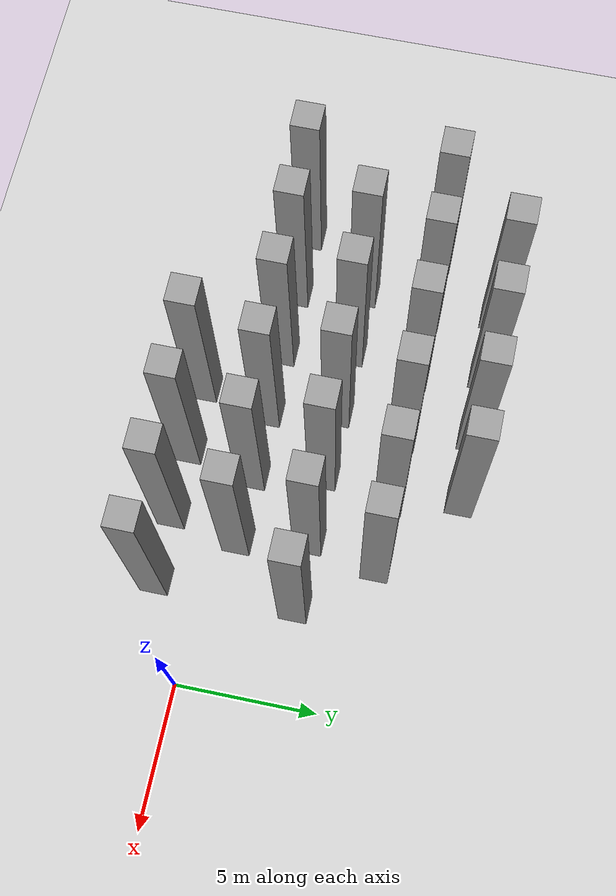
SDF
<sdf version="1.7">
 <world name="default">
  <model name="ground_plane">
   <static>1</static>
   <link name="link">
    <collision name="collision">
     <geometry><plane><normal>0 0 1</normal><size>100 100</size></plane></geometry>
     <surface>
      <contact><collide_bitmask>65535</collide_bitmask></contact>
      <friction><ode><mu>100</mu><mu2>50</mu2></ode></friction>
     </surface>
    </collision>
    <visual name="visual">
     <cast_shadows>0</cast_shadows>
     <geometry><plane><normal>0 0 1</normal><size>100 100</size></plane></geometry>
     <material>
      <script><uri>file://media/materials/scripts/gazebo.material</uri><name>Gazebo/Grey</name></script>
     </material>
    </visual>
   </link>
  </model>
  <model name="unit_box_static105">
   <link name="link">
    <inertial>
     <mass>1</mass>
     <inertia>
      <ixx>0.166667</ixx>
      <ixy>0</ixy>
      <ixz>0</ixz>
      <iyy>0.166667</iyy>
      <iyz>0</iyz>
      <izz>0.166667</izz>
     </inertia>
    </inertial>
    <visual name="visual">
     <geometry><box><size>1 1 8</size></box></geometry>
     <material>
      <script><name>Gazebo/Grey</name><uri>file://media/materials/scripts/gazebo.material</uri></script>
      <shader type="pixel"/>
     </material>
    </visual>
    <collision name="collision">
     <geometry><box><size>1 1 8</size></box></geometry>
     <surface>
      <friction>
       <ode><mu>1</mu><mu2>1</mu2><fdir1>0 0 0</fdir1><slip1>0</slip1><slip2>0</slip2></ode>
       <torsional>
        <coefficient>1</coefficient>
        <patch_radius>0</patch_radius>
        <surface_radius>0</surface_radius>
        <use_patch_radius>1</use_patch_radius>
        <ode><slip>0</slip></ode>
       </torsional>
      </friction>
      <bounce><restitution_coefficient>0</restitution_coefficient><threshold>1e+06</threshold></bounce>
      <contact>
       <collide_without_contact>0</collide_without_contact>
       <collide_without_contact_bitmask>1</collide_without_contact_bitmask>
       <collide_bitmask>1</collide_bitmask>
       <ode>
        <soft_cfm>0</soft_cfm>
        <soft_erp>0.2</soft_erp>
        <kp>1e+13</kp>
        <kd>1</kd>
        <max_vel>0.01</max_vel>
        <min_depth>0</min_depth>
       </ode>
       <bullet>
        <split_impulse>1</split_impulse>
        <split_impulse_penetration_threshold>-0.01</split_impulse_penetration_threshold>
        <soft_cfm>0</soft_cfm>
        <soft_erp>0.2</soft_erp>
        <kp>1e+13</kp>
        <kd>1</kd>
       </bullet>
      </contact>
     </surface>
    </collision>
   </link>
   <static>1</static>
   <pose>-11 -1.5 4 0 -0 0</pose>
  </model>
  <model name="unit_box_static106">
   <link name="link">
    <inertial>
     <mass>1</mass>
     <inertia>
      <ixx>0.166667</ixx>
      <ixy>0</ixy>
      <ixz>0</ixz>
      <iyy>0.166667</iyy>
      <iyz>0</iyz>
      <izz>0.166667</izz>
     </inertia>
    </inertial>
    <visual name="visual">
     <geometry><box><size>1 1 8</size></box></geometry>
     <material>
      <script><name>Gazebo/Grey</name><uri>file://media/materials/scripts/gazebo.material</uri></script>
      <shader type="pixel"/>
     </material>
    </visual>
    <collision name="collision">
     <geometry><box><size>1 1 8</size></box></geometry>
     <surface>
      <friction>
       <ode><mu>1</mu><mu2>1</mu2><fdir1>0 0 0</fdir1><slip1>0</slip1><slip2>0</slip2></ode>
       <torsional>
        <coefficient>1</coefficient>
        <patch_radius>0</patch_radius>
        <surface_radius>0</surface_radius>
        <use_patch_radius>1</use_patch_radius>
        <ode><slip>0</slip></ode>
       </torsional>
      </friction>
      <bounce><restitution_coefficient>0</restitution_coefficient><threshold>1e+06</threshold></bounce>
      <contact>
       <collide_without_contact>0</collide_without_contact>
       <collide_without_contact_bitmask>1</collide_without_contact_bitmask>
       <collide_bitmask>1</collide_bitmask>
       <ode>
        <soft_cfm>0</soft_cfm>
        <soft_erp>0.2</soft_erp>
        <kp>1e+13</kp>
        <kd>1</kd>
        <max_vel>0.01</max_vel>
        <min_depth>0</min_depth>
       </ode>
       <bullet>
        <split_impulse>1</split_impulse>
        <split_impulse_penetration_threshold>-0.01</split_impulse_penetration_threshold>
        <soft_cfm>0</soft_cfm>
        <soft_erp>0.2</soft_erp>
        <kp>1e+13</kp>
        <kd>1</kd>
       </bullet>
      </contact>
     </surface>
    </collision>
   </link>
   <static>1</static>
   <pose>-8.5 -1.5 4 0 -0 0</pose>
  </model>
  <model name="unit_box_static107">
   <link name="link">
    <inertial>
     <mass>1</mass>
     <inertia>
      <ixx>0.166667</ixx>
      <ixy>0</ixy>
      <ixz>0</ixz>
      <iyy>0.166667</iyy>
      <iyz>0</iyz>
      <izz>0.166667</izz>
     </inertia>
    </inertial>
    <visual name="visual">
     <geometry><box><size>1 1 8</size></box></geometry>
     <material>
      <script><name>Gazebo/Grey</name><uri>file://media/materials/scripts/gazebo.material</uri></script>
      <shader type="pixel"/>
     </material>
    </visual>
    <collision name="collision">
     <geometry><box><size>1 1 8</size></box></geometry>
     <surface>
      <friction>
       <ode><mu>1</mu><mu2>1</mu2><fdir1>0 0 0</fdir1><slip1>0</slip1><slip2>0</slip2></ode>
       <torsional>
        <coefficient>1</coefficient>
        <patch_radius>0</patch_radius>
        <surface_radius>0</surface_radius>
        <use_patch_radius>1</use_patch_radius>
        <ode><slip>0</slip></ode>
       </torsional>
      </friction>
      <bounce><restitution_coefficient>0</restitution_coefficient><threshold>1e+06</threshold></bounce>
      <contact>
       <collide_without_contact>0</collide_without_contact>
       <collide_without_contact_bitmask>1</collide_without_contact_bitmask>
       <collide_bitmask>1</collide_bitmask>
       <ode>
        <soft_cfm>0</soft_cfm>
        <soft_erp>0.2</soft_erp>
        <kp>1e+13</kp>
        <kd>1</kd>
        <max_vel>0.01</max_vel>
        <min_depth>0</min_depth>
       </ode>
       <bullet>
        <split_impulse>1</split_impulse>
        <split_impulse_penetration_threshold>-0.01</split_impulse_penetration_threshold>
        <soft_cfm>0</soft_cfm>
        <soft_erp>0.2</soft_erp>
        <kp>1e+13</kp>
        <kd>1</kd>
       </bullet>
      </contact>
     </surface>
    </collision>
   </link>
   <static>1</static>
   <pose>-6 -1.5 4 0 -0 0</pose>
  </model>
  <model name="unit_box_static108">
   <link name="link">
    <inertial>
     <mass>1</mass>
     <inertia>
      <ixx>0.166667</ixx>
      <ixy>0</ixy>
      <ixz>0</ixz>
      <iyy>0.166667</iyy>
      <iyz>0</iyz>
      <izz>0.166667</izz>
     </inertia>
    </inertial>
    <visual name="visual">
     <geometry><box><size>1 1 8</size></box></geometry>
     <material>
      <script><name>Gazebo/Grey</name><uri>file://media/materials/scripts/gazebo.material</uri></script>
      <shader type="pixel"/>
     </material>
    </visual>
    <collision name="collision">
     <geometry><box><size>1 1 8</size></box></geometry>
     <surface>
      <friction>
       <ode><mu>1</mu><mu2>1</mu2><fdir1>0 0 0</fdir1><slip1>0</slip1><slip2>0</slip2></ode>
       <torsional>
        <coefficient>1</coefficient>
        <patch_radius>0</patch_radius>
        <surface_radius>0</surface_radius>
        <use_patch_radius>1</use_patch_radius>
        <ode><slip>0</slip></ode>
       </torsional>
      </friction>
      <bounce><restitution_coefficient>0</restitution_coefficient><threshold>1e+06</threshold></bounce>
      <contact>
       <collide_without_contact>0</collide_without_contact>
       <collide_without_contact_bitmask>1</collide_without_contact_bitmask>
       <collide_bitmask>1</collide_bitmask>
       <ode>
        <soft_cfm>0</soft_cfm>
        <soft_erp>0.2</soft_erp>
        <kp>1e+13</kp>
        <kd>1</kd>
        <max_vel>0.01</max_vel>
        <min_depth>0</min_depth>
       </ode>
       <bullet>
        <split_impulse>1</split_impulse>
        <split_impulse_penetration_threshold>-0.01</split_impulse_penetration_threshold>
        <soft_cfm>0</soft_cfm>
        <soft_erp>0.2</soft_erp>
        <kp>1e+13</kp>
        <kd>1</kd>
       </bullet>
      </contact>
     </surface>
    </collision>
   </link>
   <static>1</static>
   <pose>-3.5 -1.5 4 0 -0 0</pose>
  </model>
  <model name="unit_box_static117">
   <link name="link">
    <inertial>
     <mass>1</mass>
     <inertia>
      <ixx>0.166667</ixx>
      <ixy>0</ixy>
      <ixz>0</ixz>
      <iyy>0.166667</iyy>
      <iyz>0</iyz>
      <izz>0.166667</izz>
     </inertia>
    </inertial>
    <visual name="visual">
     <geometry><box><size>1 1 8</size></box></geometry>
     <material>
      <script><name>Gazebo/Grey</name><uri>file://media/materials/scripts/gazebo.material</uri></script>
      <shader type="pixel"/>
     </material>
    </visual>
    <collision name="collision">
     <geometry><box><size>1 1 8</size></box></geometry>
     <surface>
      <friction>
       <ode><mu>1</mu><mu2>1</mu2><fdir1>0 0 0</fdir1><slip1>0</slip1><slip2>0</slip2></ode>
       <torsional>
        <coefficient>1</coefficient>
        <patch_radius>0</patch_radius>
        <surface_radius>0</surface_radius>
        <use_patch_radius>1</use_patch_radius>
        <ode><slip>0</slip></ode>
       </torsional>
      </friction>
      <bounce><restitution_coefficient>0</restitution_coefficient><threshold>1e+06</threshold></bounce>
      <contact>
       <collide_without_contact>0</collide_without_contact>
       <collide_without_contact_bitmask>1</collide_without_contact_bitmask>
       <collide_bitmask>1</collide_bitmask>
       <ode>
        <soft_cfm>0</soft_cfm>
        <soft_erp>0.2</soft_erp>
        <kp>1e+13</kp>
        <kd>1</kd>
        <max_vel>0.01</max_vel>
        <min_depth>0</min_depth>
       </ode>
       <bullet>
        <split_impulse>1</split_impulse>
        <split_impulse_penetration_threshold>-0.01</split_impulse_penetration_threshold>
        <soft_cfm>0</soft_cfm>
        <soft_erp>0.2</soft_erp>
        <kp>1e+13</kp>
        <kd>1</kd>
       </bullet>
      </contact>
     </surface>
    </collision>
   </link>
   <static>1</static>
   <pose>-18 1 4 0 -0 0</pose>
  </model>
  <model name="unit_box_static118">
   <link name="link">
    <inertial>
     <mass>1</mass>
     <inertia>
      <ixx>0.166667</ixx>
      <ixy>0</ixy>
      <ixz>0</ixz>
      <iyy>0.166667</iyy>
      <iyz>0</iyz>
      <izz>0.166667</izz>
     </inertia>
    </inertial>
    <visual name="visual">
     <geometry><box><size>1 1 8</size></box></geometry>
     <material>
      <script><name>Gazebo/Grey</name><uri>file://media/materials/scripts/gazebo.material</uri></script>
      <shader type="pixel"/>
     </material>
    </visual>
    <collision name="collision">
     <geometry><box><size>1 1 8</size></box></geometry>
     <surface>
      <friction>
       <ode><mu>1</mu><mu2>1</mu2><fdir1>0 0 0</fdir1><slip1>0</slip1><slip2>0</slip2></ode>
       <torsional>
        <coefficient>1</coefficient>
        <patch_radius>0</patch_radius>
        <surface_radius>0</surface_radius>
        <use_patch_radius>1</use_patch_radius>
        <ode><slip>0</slip></ode>
       </torsional>
      </friction>
      <bounce><restitution_coefficient>0</restitution_coefficient><threshold>1e+06</threshold></bounce>
      <contact>
       <collide_without_contact>0</collide_without_contact>
       <collide_without_contact_bitmask>1</collide_without_contact_bitmask>
       <collide_bitmask>1</collide_bitmask>
       <ode>
        <soft_cfm>0</soft_cfm>
        <soft_erp>0.2</soft_erp>
        <kp>1e+13</kp>
        <kd>1</kd>
        <max_vel>0.01</max_vel>
        <min_depth>0</min_depth>
       </ode>
       <bullet>
        <split_impulse>1</split_impulse>
        <split_impulse_penetration_threshold>-0.01</split_impulse_penetration_threshold>
        <soft_cfm>0</soft_cfm>
        <soft_erp>0.2</soft_erp>
        <kp>1e+13</kp>
        <kd>1</kd>
       </bullet>
      </contact>
     </surface>
    </collision>
   </link>
   <static>1</static>
   <pose>-15.5 1 4 0 -0 0</pose>
  </model>
  <model name="unit_box_static119">
   <link name="link">
    <inertial>
     <mass>1</mass>
     <inertia>
      <ixx>0.166667</ixx>
      <ixy>0</ixy>
      <ixz>0</ixz>
      <iyy>0.166667</iyy>
      <iyz>0</iyz>
      <izz>0.166667</izz>
     </inertia>
    </inertial>
    <visual name="visual">
     <geometry><box><size>1 1 8</size></box></geometry>
     <material>
      <script><name>Gazebo/Grey</name><uri>file://media/materials/scripts/gazebo.material</uri></script>
      <shader type="pixel"/>
     </material>
    </visual>
    <collision name="collision">
     <geometry><box><size>1 1 8</size></box></geometry>
     <surface>
      <friction>
       <ode><mu>1</mu><mu2>1</mu2><fdir1>0 0 0</fdir1><slip1>0</slip1><slip2>0</slip2></ode>
       <torsional>
        <coefficient>1</coefficient>
        <patch_radius>0</patch_radius>
        <surface_radius>0</surface_radius>
        <use_patch_radius>1</use_patch_radius>
        <ode><slip>0</slip></ode>
       </torsional>
      </friction>
      <bounce><restitution_coefficient>0</restitution_coefficient><threshold>1e+06</threshold></bounce>
      <contact>
       <collide_without_contact>0</collide_without_contact>
       <collide_without_contact_bitmask>1</collide_without_contact_bitmask>
       <collide_bitmask>1</collide_bitmask>
       <ode>
        <soft_cfm>0</soft_cfm>
        <soft_erp>0.2</soft_erp>
        <kp>1e+13</kp>
        <kd>1</kd>
        <max_vel>0.01</max_vel>
        <min_depth>0</min_depth>
       </ode>
       <bullet>
        <split_impulse>1</split_impulse>
        <split_impulse_penetration_threshold>-0.01</split_impulse_penetration_threshold>
        <soft_cfm>0</soft_cfm>
        <soft_erp>0.2</soft_erp>
        <kp>1e+13</kp>
        <kd>1</kd>
       </bullet>
      </contact>
     </surface>
    </collision>
   </link>
   <static>1</static>
   <pose>-13 1 4 0 -0 0</pose>
  </model>
  <model name="unit_box_static120">
   <link name="link">
    <inertial>
     <mass>1</mass>
     <inertia>
      <ixx>0.166667</ixx>
      <ixy>0</ixy>
      <ixz>0</ixz>
      <iyy>0.166667</iyy>
      <iyz>0</iyz>
      <izz>0.166667</izz>
     </inertia>
    </inertial>
    <visual name="visual">
     <geometry><box><size>1 1 8</size></box></geometry>
     <material>
      <script><name>Gazebo/Grey</name><uri>file://media/materials/scripts/gazebo.material</uri></script>
      <shader type="pixel"/>
     </material>
    </visual>
    <collision name="collision">
     <geometry><box><size>1 1 8</size></box></geometry>
     <surface>
      <friction>
       <ode><mu>1</mu><mu2>1</mu2><fdir1>0 0 0</fdir1><slip1>0</slip1><slip2>0</slip2></ode>
       <torsional>
        <coefficient>1</coefficient>
        <patch_radius>0</patch_radius>
        <surface_radius>0</surface_radius>
        <use_patch_radius>1</use_patch_radius>
        <ode><slip>0</slip></ode>
       </torsional>
      </friction>
      <bounce><restitution_coefficient>0</restitution_coefficient><threshold>1e+06</threshold></bounce>
      <contact>
       <collide_without_contact>0</collide_without_contact>
       <collide_without_contact_bitmask>1</collide_without_contact_bitmask>
       <collide_bitmask>1</collide_bitmask>
       <ode>
        <soft_cfm>0</soft_cfm>
        <soft_erp>0.2</soft_erp>
        <kp>1e+13</kp>
        <kd>1</kd>
        <max_vel>0.01</max_vel>
        <min_depth>0</min_depth>
       </ode>
       <bullet>
        <split_impulse>1</split_impulse>
        <split_impulse_penetration_threshold>-0.01</split_impulse_penetration_threshold>
        <soft_cfm>0</soft_cfm>
        <soft_erp>0.2</soft_erp>
        <kp>1e+13</kp>
        <kd>1</kd>
       </bullet>
      </contact>
     </surface>
    </collision>
   </link>
   <static>1</static>
   <pose>-10.5 1 4 0 -0 0</pose>
  </model>
  <model name="unit_box_static121">
   <link name="link">
    <inertial>
     <mass>1</mass>
     <inertia>
      <ixx>0.166667</ixx>
      <ixy>0</ixy>
      <ixz>0</ixz>
      <iyy>0.166667</iyy>
      <iyz>0</iyz>
      <izz>0.166667</izz>
     </inertia>
    </inertial>
    <visual name="visual">
     <geometry><box><size>1 1 8</size></box></geometry>
     <material>
      <script><name>Gazebo/Grey</name><uri>file://media/materials/scripts/gazebo.material</uri></script>
      <shader type="pixel"/>
     </material>
    </visual>
    <collision name="collision">
     <geometry><box><size>1 1 8</size></box></geometry>
     <surface>
      <friction>
       <ode><mu>1</mu><mu2>1</mu2><fdir1>0 0 0</fdir1><slip1>0</slip1><slip2>0</slip2></ode>
       <torsional>
        <coefficient>1</coefficient>
        <patch_radius>0</patch_radius>
        <surface_radius>0</surface_radius>
        <use_patch_radius>1</use_patch_radius>
        <ode><slip>0</slip></ode>
       </torsional>
      </friction>
      <bounce><restitution_coefficient>0</restitution_coefficient><threshold>1e+06</threshold></bounce>
      <contact>
       <collide_without_contact>0</collide_without_contact>
       <collide_without_contact_bitmask>1</collide_without_contact_bitmask>
       <collide_bitmask>1</collide_bitmask>
       <ode>
        <soft_cfm>0</soft_cfm>
        <soft_erp>0.2</soft_erp>
        <kp>1e+13</kp>
        <kd>1</kd>
        <max_vel>0.01</max_vel>
        <min_depth>0</min_depth>
       </ode>
       <bullet>
        <split_impulse>1</split_impulse>
        <split_impulse_penetration_threshold>-0.01</split_impulse_penetration_threshold>
        <soft_cfm>0</soft_cfm>
        <soft_erp>0.2</soft_erp>
        <kp>1e+13</kp>
        <kd>1</kd>
       </bullet>
      </contact>
     </surface>
    </collision>
   </link>
   <static>1</static>
   <pose>-8 1 4 0 -0 0</pose>
  </model>
  <model name="unit_box_static122">
   <link name="link">
    <inertial>
     <mass>1</mass>
     <inertia>
      <ixx>0.166667</ixx>
      <ixy>0</ixy>
      <ixz>0</ixz>
      <iyy>0.166667</iyy>
      <iyz>0</iyz>
      <izz>0.166667</izz>
     </inertia>
    </inertial>
    <visual name="visual">
     <geometry><box><size>1 1 8</size></box></geometry>
     <material>
      <script><name>Gazebo/Grey</name><uri>file://media/materials/scripts/gazebo.material</uri></script>
      <shader type="pixel"/>
     </material>
    </visual>
    <collision name="collision">
     <geometry><box><size>1 1 8</size></box></geometry>
     <surface>
      <friction>
       <ode><mu>1</mu><mu2>1</mu2><fdir1>0 0 0</fdir1><slip1>0</slip1><slip2>0</slip2></ode>
       <torsional>
        <coefficient>1</coefficient>
        <patch_radius>0</patch_radius>
        <surface_radius>0</surface_radius>
        <use_patch_radius>1</use_patch_radius>
        <ode><slip>0</slip></ode>
       </torsional>
      </friction>
      <bounce><restitution_coefficient>0</restitution_coefficient><threshold>1e+06</threshold></bounce>
      <contact>
       <collide_without_contact>0</collide_without_contact>
       <collide_without_contact_bitmask>1</collide_without_contact_bitmask>
       <collide_bitmask>1</collide_bitmask>
       <ode>
        <soft_cfm>0</soft_cfm>
        <soft_erp>0.2</soft_erp>
        <kp>1e+13</kp>
        <kd>1</kd>
        <max_vel>0.01</max_vel>
        <min_depth>0</min_depth>
       </ode>
       <bullet>
        <split_impulse>1</split_impulse>
        <split_impulse_penetration_threshold>-0.01</split_impulse_penetration_threshold>
        <soft_cfm>0</soft_cfm>
        <soft_erp>0.2</soft_erp>
        <kp>1e+13</kp>
        <kd>1</kd>
       </bullet>
      </contact>
     </surface>
    </collision>
   </link>
   <static>1</static>
   <pose>-5.5 1 4 0 -0 0</pose>
  </model>
  <model name="unit_box_static132">
   <link name="link">
    <inertial>
     <mass>1</mass>
     <inertia>
      <ixx>0.166667</ixx>
      <ixy>0</ixy>
      <ixz>0</ixz>
      <iyy>0.166667</iyy>
      <iyz>0</iyz>
      <izz>0.166667</izz>
     </inertia>
    </inertial>
    <visual name="visual">
     <geometry><box><size>1 1 8</size></box></geometry>
     <material>
      <script><name>Gazebo/Grey</name><uri>file://media/materials/scripts/gazebo.material</uri></script>
      <shader type="pixel"/>
     </material>
    </visual>
    <collision name="collision">
     <geometry><box><size>1 1 8</size></box></geometry>
     <surface>
      <friction>
       <ode><mu>1</mu><mu2>1</mu2><fdir1>0 0 0</fdir1><slip1>0</slip1><slip2>0</slip2></ode>
       <torsional>
        <coefficient>1</coefficient>
        <patch_radius>0</patch_radius>
        <surface_radius>0</surface_radius>
        <use_patch_radius>1</use_patch_radius>
        <ode><slip>0</slip></ode>
       </torsional>
      </friction>
      <bounce><restitution_coefficient>0</restitution_coefficient><threshold>1e+06</threshold></bounce>
      <contact>
       <collide_without_contact>0</collide_without_contact>
       <collide_without_contact_bitmask>1</collide_without_contact_bitmask>
       <collide_bitmask>1</collide_bitmask>
       <ode>
        <soft_cfm>0</soft_cfm>
        <soft_erp>0.2</soft_erp>
        <kp>1e+13</kp>
        <kd>1</kd>
        <max_vel>0.01</max_vel>
        <min_depth>0</min_depth>
       </ode>
       <bullet>
        <split_impulse>1</split_impulse>
        <split_impulse_penetration_threshold>-0.01</split_impulse_penetration_threshold>
        <soft_cfm>0</soft_cfm>
        <soft_erp>0.2</soft_erp>
        <kp>1e+13</kp>
        <kd>1</kd>
       </bullet>
      </contact>
     </surface>
    </collision>
   </link>
   <static>1</static>
   <pose>-16 3.5 4 0 -0 0</pose>
  </model>
  <model name="unit_box_static133">
   <link name="link">
    <inertial>
     <mass>1</mass>
     <inertia>
      <ixx>0.166667</ixx>
      <ixy>0</ixy>
      <ixz>0</ixz>
      <iyy>0.166667</iyy>
      <iyz>0</iyz>
      <izz>0.166667</izz>
     </inertia>
    </inertial>
    <visual name="visual">
     <geometry><box><size>1 1 8</size></box></geometry>
     <material>
      <script><name>Gazebo/Grey</name><uri>file://media/materials/scripts/gazebo.material</uri></script>
      <shader type="pixel"/>
     </material>
    </visual>
    <collision name="collision">
     <geometry><box><size>1 1 8</size></box></geometry>
     <surface>
      <friction>
       <ode><mu>1</mu><mu2>1</mu2><fdir1>0 0 0</fdir1><slip1>0</slip1><slip2>0</slip2></ode>
       <torsional>
        <coefficient>1</coefficient>
        <patch_radius>0</patch_radius>
        <surface_radius>0</surface_radius>
        <use_patch_radius>1</use_patch_radius>
        <ode><slip>0</slip></ode>
       </torsional>
      </friction>
      <bounce><restitution_coefficient>0</restitution_coefficient><threshold>1e+06</threshold></bounce>
      <contact>
       <collide_without_contact>0</collide_without_contact>
       <collide_without_contact_bitmask>1</collide_without_contact_bitmask>
       <collide_bitmask>1</collide_bitmask>
       <ode>
        <soft_cfm>0</soft_cfm>
        <soft_erp>0.2</soft_erp>
        <kp>1e+13</kp>
        <kd>1</kd>
        <max_vel>0.01</max_vel>
        <min_depth>0</min_depth>
       </ode>
       <bullet>
        <split_impulse>1</split_impulse>
        <split_impulse_penetration_threshold>-0.01</split_impulse_penetration_threshold>
        <soft_cfm>0</soft_cfm>
        <soft_erp>0.2</soft_erp>
        <kp>1e+13</kp>
        <kd>1</kd>
       </bullet>
      </contact>
     </surface>
    </collision>
   </link>
   <static>1</static>
   <pose>-13.5 3.5 4 0 -0 0</pose>
  </model>
  <model name="unit_box_static134">
   <link name="link">
    <inertial>
     <mass>1</mass>
     <inertia>
      <ixx>0.166667</ixx>
      <ixy>0</ixy>
      <ixz>0</ixz>
      <iyy>0.166667</iyy>
      <iyz>0</iyz>
      <izz>0.166667</izz>
     </inertia>
    </inertial>
    <visual name="visual">
     <geometry><box><size>1 1 8</size></box></geometry>
     <material>
      <script><name>Gazebo/Grey</name><uri>file://media/materials/scripts/gazebo.material</uri></script>
      <shader type="pixel"/>
     </material>
    </visual>
    <collision name="collision">
     <geometry><box><size>1 1 8</size></box></geometry>
     <surface>
      <friction>
       <ode><mu>1</mu><mu2>1</mu2><fdir1>0 0 0</fdir1><slip1>0</slip1><slip2>0</slip2></ode>
       <torsional>
        <coefficient>1</coefficient>
        <patch_radius>0</patch_radius>
        <surface_radius>0</surface_radius>
        <use_patch_radius>1</use_patch_radius>
        <ode><slip>0</slip></ode>
       </torsional>
      </friction>
      <bounce><restitution_coefficient>0</restitution_coefficient><threshold>1e+06</threshold></bounce>
      <contact>
       <collide_without_contact>0</collide_without_contact>
       <collide_without_contact_bitmask>1</collide_without_contact_bitmask>
       <collide_bitmask>1</collide_bitmask>
       <ode>
        <soft_cfm>0</soft_cfm>
        <soft_erp>0.2</soft_erp>
        <kp>1e+13</kp>
        <kd>1</kd>
        <max_vel>0.01</max_vel>
        <min_depth>0</min_depth>
       </ode>
       <bullet>
        <split_impulse>1</split_impulse>
        <split_impulse_penetration_threshold>-0.01</split_impulse_penetration_threshold>
        <soft_cfm>0</soft_cfm>
        <soft_erp>0.2</soft_erp>
        <kp>1e+13</kp>
        <kd>1</kd>
       </bullet>
      </contact>
     </surface>
    </collision>
   </link>
   <static>1</static>
   <pose>-11 3.5 4 0 -0 0</pose>
  </model>
  <model name="unit_box_static135">
   <link name="link">
    <inertial>
     <mass>1</mass>
     <inertia>
      <ixx>0.166667</ixx>
      <ixy>0</ixy>
      <ixz>0</ixz>
      <iyy>0.166667</iyy>
      <iyz>0</iyz>
      <izz>0.166667</izz>
     </inertia>
    </inertial>
    <visual name="visual">
     <geometry><box><size>1 1 8</size></box></geometry>
     <material>
      <script><name>Gazebo/Grey</name><uri>file://media/materials/scripts/gazebo.material</uri></script>
      <shader type="pixel"/>
     </material>
    </visual>
    <collision name="collision">
     <geometry><box><size>1 1 8</size></box></geometry>
     <surface>
      <friction>
       <ode><mu>1</mu><mu2>1</mu2><fdir1>0 0 0</fdir1><slip1>0</slip1><slip2>0</slip2></ode>
       <torsional>
        <coefficient>1</coefficient>
        <patch_radius>0</patch_radius>
        <surface_radius>0</surface_radius>
        <use_patch_radius>1</use_patch_radius>
        <ode><slip>0</slip></ode>
       </torsional>
      </friction>
      <bounce><restitution_coefficient>0</restitution_coefficient><threshold>1e+06</threshold></bounce>
      <contact>
       <collide_without_contact>0</collide_without_contact>
       <collide_without_contact_bitmask>1</collide_without_contact_bitmask>
       <collide_bitmask>1</collide_bitmask>
       <ode>
        <soft_cfm>0</soft_cfm>
        <soft_erp>0.2</soft_erp>
        <kp>1e+13</kp>
        <kd>1</kd>
        <max_vel>0.01</max_vel>
        <min_depth>0</min_depth>
       </ode>
       <bullet>
        <split_impulse>1</split_impulse>
        <split_impulse_penetration_threshold>-0.01</split_impulse_penetration_threshold>
        <soft_cfm>0</soft_cfm>
        <soft_erp>0.2</soft_erp>
        <kp>1e+13</kp>
        <kd>1</kd>
       </bullet>
      </contact>
     </surface>
    </collision>
   </link>
   <static>1</static>
   <pose>-8.5 3.5 4 0 -0 0</pose>
  </model>
  <model name="unit_box_static136">
   <link name="link">
    <inertial>
     <mass>1</mass>
     <inertia>
      <ixx>0.166667</ixx>
      <ixy>0</ixy>
      <ixz>0</ixz>
      <iyy>0.166667</iyy>
      <iyz>0</iyz>
      <izz>0.166667</izz>
     </inertia>
    </inertial>
    <visual name="visual">
     <geometry><box><size>1 1 8</size></box></geometry>
     <material>
      <script><name>Gazebo/Grey</name><uri>file://media/materials/scripts/gazebo.material</uri></script>
      <shader type="pixel"/>
     </material>
    </visual>
    <collision name="collision">
     <geometry><box><size>1 1 8</size></box></geometry>
     <surface>
      <friction>
       <ode><mu>1</mu><mu2>1</mu2><fdir1>0 0 0</fdir1><slip1>0</slip1><slip2>0</slip2></ode>
       <torsional>
        <coefficient>1</coefficient>
        <patch_radius>0</patch_radius>
        <surface_radius>0</surface_radius>
        <use_patch_radius>1</use_patch_radius>
        <ode><slip>0</slip></ode>
       </torsional>
      </friction>
      <bounce><restitution_coefficient>0</restitution_coefficient><threshold>1e+06</threshold></bounce>
      <contact>
       <collide_without_contact>0</collide_without_contact>
       <collide_without_contact_bitmask>1</collide_without_contact_bitmask>
       <collide_bitmask>1</collide_bitmask>
       <ode>
        <soft_cfm>0</soft_cfm>
        <soft_erp>0.2</soft_erp>
        <kp>1e+13</kp>
        <kd>1</kd>
        <max_vel>0.01</max_vel>
        <min_depth>0</min_depth>
       </ode>
       <bullet>
        <split_impulse>1</split_impulse>
        <split_impulse_penetration_threshold>-0.01</split_impulse_penetration_threshold>
        <soft_cfm>0</soft_cfm>
        <soft_erp>0.2</soft_erp>
        <kp>1e+13</kp>
        <kd>1</kd>
       </bullet>
      </contact>
     </surface>
    </collision>
   </link>
   <static>1</static>
   <pose>-6 3.5 4 0 -0 0</pose>
  </model>
  <model name="unit_box_static137">
   <link name="link">
    <inertial>
     <mass>1</mass>
     <inertia>
      <ixx>0.166667</ixx>
      <ixy>0</ixy>
      <ixz>0</ixz>
      <iyy>0.166667</iyy>
      <iyz>0</iyz>
      <izz>0.166667</izz>
     </inertia>
    </inertial>
    <visual name="visual">
     <geometry><box><size>1 1 8</size></box></geometry>
     <material>
      <script><name>Gazebo/Grey</name><uri>file://media/materials/scripts/gazebo.material</uri></script>
      <shader type="pixel"/>
     </material>
    </visual>
    <collision name="collision">
     <geometry><box><size>1 1 8</size></box></geometry>
     <surface>
      <friction>
       <ode><mu>1</mu><mu2>1</mu2><fdir1>0 0 0</fdir1><slip1>0</slip1><slip2>0</slip2></ode>
       <torsional>
        <coefficient>1</coefficient>
        <patch_radius>0</patch_radius>
        <surface_radius>0</surface_radius>
        <use_patch_radius>1</use_patch_radius>
        <ode><slip>0</slip></ode>
       </torsional>
      </friction>
      <bounce><restitution_coefficient>0</restitution_coefficient><threshold>1e+06</threshold></bounce>
      <contact>
       <collide_without_contact>0</collide_without_contact>
       <collide_without_contact_bitmask>1</collide_without_contact_bitmask>
       <collide_bitmask>1</collide_bitmask>
       <ode>
        <soft_cfm>0</soft_cfm>
        <soft_erp>0.2</soft_erp>
        <kp>1e+13</kp>
        <kd>1</kd>
        <max_vel>0.01</max_vel>
        <min_depth>0</min_depth>
       </ode>
       <bullet>
        <split_impulse>1</split_impulse>
        <split_impulse_penetration_threshold>-0.01</split_impulse_penetration_threshold>
        <soft_cfm>0</soft_cfm>
        <soft_erp>0.2</soft_erp>
        <kp>1e+13</kp>
        <kd>1</kd>
       </bullet>
      </contact>
     </surface>
    </collision>
   </link>
   <static>1</static>
   <pose>-3.5 3.5 4 0 -0 0</pose>
  </model>
  <model name="unit_box_static146">
   <link name="link">
    <inertial>
     <mass>1</mass>
     <inertia>
      <ixx>0.166667</ixx>
      <ixy>0</ixy>
      <ixz>0</ixz>
      <iyy>0.166667</iyy>
      <iyz>0</iyz>
      <izz>0.166667</izz>
     </inertia>
    </inertial>
    <visual name="visual">
     <geometry><box><size>1 1 8</size></box></geometry>
     <material>
      <script><name>Gazebo/Grey</name><uri>file://media/materials/scripts/gazebo.material</uri></script>
      <shader type="pixel"/>
     </material>
    </visual>
    <collision name="collision">
     <geometry><box><size>1 1 8</size></box></geometry>
     <surface>
      <friction>
       <ode><mu>1</mu><mu2>1</mu2><fdir1>0 0 0</fdir1><slip1>0</slip1><slip2>0</slip2></ode>
       <torsional>
        <coefficient>1</coefficient>
        <patch_radius>0</patch_radius>
        <surface_radius>0</surface_radius>
        <use_patch_radius>1</use_patch_radius>
        <ode><slip>0</slip></ode>
       </torsional>
      </friction>
      <bounce><restitution_coefficient>0</restitution_coefficient><threshold>1e+06</threshold></bounce>
      <contact>
       <collide_without_contact>0</collide_without_contact>
       <collide_without_contact_bitmask>1</collide_without_contact_bitmask>
       <collide_bitmask>1</collide_bitmask>
       <ode>
        <soft_cfm>0</soft_cfm>
        <soft_erp>0.2</soft_erp>
        <kp>1e+13</kp>
        <kd>1</kd>
        <max_vel>0.01</max_vel>
        <min_depth>0</min_depth>
       </ode>
       <bullet>
        <split_impulse>1</split_impulse>
        <split_impulse_penetration_threshold>-0.01</split_impulse_penetration_threshold>
        <soft_cfm>0</soft_cfm>
        <soft_erp>0.2</soft_erp>
        <kp>1e+13</kp>
        <kd>1</kd>
       </bullet>
      </contact>
     </surface>
    </collision>
   </link>
   <static>1</static>
   <pose>-18 6 4 0 -0 0</pose>
  </model>
  <model name="unit_box_static147">
   <link name="link">
    <inertial>
     <mass>1</mass>
     <inertia>
      <ixx>0.166667</ixx>
      <ixy>0</ixy>
      <ixz>0</ixz>
      <iyy>0.166667</iyy>
      <iyz>0</iyz>
      <izz>0.166667</izz>
     </inertia>
    </inertial>
    <visual name="visual">
     <geometry><box><size>1 1 8</size></box></geometry>
     <material>
      <script><name>Gazebo/Grey</name><uri>file://media/materials/scripts/gazebo.material</uri></script>
      <shader type="pixel"/>
     </material>
    </visual>
    <collision name="collision">
     <geometry><box><size>1 1 8</size></box></geometry>
     <surface>
      <friction>
       <ode><mu>1</mu><mu2>1</mu2><fdir1>0 0 0</fdir1><slip1>0</slip1><slip2>0</slip2></ode>
       <torsional>
        <coefficient>1</coefficient>
        <patch_radius>0</patch_radius>
        <surface_radius>0</surface_radius>
        <use_patch_radius>1</use_patch_radius>
        <ode><slip>0</slip></ode>
       </torsional>
      </friction>
      <bounce><restitution_coefficient>0</restitution_coefficient><threshold>1e+06</threshold></bounce>
      <contact>
       <collide_without_contact>0</collide_without_contact>
       <collide_without_contact_bitmask>1</collide_without_contact_bitmask>
       <collide_bitmask>1</collide_bitmask>
       <ode>
        <soft_cfm>0</soft_cfm>
        <soft_erp>0.2</soft_erp>
        <kp>1e+13</kp>
        <kd>1</kd>
        <max_vel>0.01</max_vel>
        <min_depth>0</min_depth>
       </ode>
       <bullet>
        <split_impulse>1</split_impulse>
        <split_impulse_penetration_threshold>-0.01</split_impulse_penetration_threshold>
        <soft_cfm>0</soft_cfm>
        <soft_erp>0.2</soft_erp>
        <kp>1e+13</kp>
        <kd>1</kd>
       </bullet>
      </contact>
     </surface>
    </collision>
   </link>
   <static>1</static>
   <pose>-15.5 6 4 0 -0 0</pose>
  </model>
  <model name="unit_box_static148">
   <link name="link">
    <inertial>
     <mass>1</mass>
     <inertia>
      <ixx>0.166667</ixx>
      <ixy>0</ixy>
      <ixz>0</ixz>
      <iyy>0.166667</iyy>
      <iyz>0</iyz>
      <izz>0.166667</izz>
     </inertia>
    </inertial>
    <visual name="visual">
     <geometry><box><size>1 1 8</size></box></geometry>
     <material>
      <script><name>Gazebo/Grey</name><uri>file://media/materials/scripts/gazebo.material</uri></script>
      <shader type="pixel"/>
     </material>
    </visual>
    <collision name="collision">
     <geometry><box><size>1 1 8</size></box></geometry>
     <surface>
      <friction>
       <ode><mu>1</mu><mu2>1</mu2><fdir1>0 0 0</fdir1><slip1>0</slip1><slip2>0</slip2></ode>
       <torsional>
        <coefficient>1</coefficient>
        <patch_radius>0</patch_radius>
        <surface_radius>0</surface_radius>
        <use_patch_radius>1</use_patch_radius>
        <ode><slip>0</slip></ode>
       </torsional>
      </friction>
      <bounce><restitution_coefficient>0</restitution_coefficient><threshold>1e+06</threshold></bounce>
      <contact>
       <collide_without_contact>0</collide_without_contact>
       <collide_without_contact_bitmask>1</collide_without_contact_bitmask>
       <collide_bitmask>1</collide_bitmask>
       <ode>
        <soft_cfm>0</soft_cfm>
        <soft_erp>0.2</soft_erp>
        <kp>1e+13</kp>
        <kd>1</kd>
        <max_vel>0.01</max_vel>
        <min_depth>0</min_depth>
       </ode>
       <bullet>
        <split_impulse>1</split_impulse>
        <split_impulse_penetration_threshold>-0.01</split_impulse_penetration_threshold>
        <soft_cfm>0</soft_cfm>
        <soft_erp>0.2</soft_erp>
        <kp>1e+13</kp>
        <kd>1</kd>
       </bullet>
      </contact>
     </surface>
    </collision>
   </link>
   <static>1</static>
   <pose>-13 6 4 0 -0 0</pose>
  </model>
  <model name="unit_box_static149">
   <link name="link">
    <inertial>
     <mass>1</mass>
     <inertia>
      <ixx>0.166667</ixx>
      <ixy>0</ixy>
      <ixz>0</ixz>
      <iyy>0.166667</iyy>
      <iyz>0</iyz>
      <izz>0.166667</izz>
     </inertia>
    </inertial>
    <visual name="visual">
     <geometry><box><size>1 1 8</size></box></geometry>
     <material>
      <script><name>Gazebo/Grey</name><uri>file://media/materials/scripts/gazebo.material</uri></script>
      <shader type="pixel"/>
     </material>
    </visual>
    <collision name="collision">
     <geometry><box><size>1 1 8</size></box></geometry>
     <surface>
      <friction>
       <ode><mu>1</mu><mu2>1</mu2><fdir1>0 0 0</fdir1><slip1>0</slip1><slip2>0</slip2></ode>
       <torsional>
        <coefficient>1</coefficient>
        <patch_radius>0</patch_radius>
        <surface_radius>0</surface_radius>
        <use_patch_radius>1</use_patch_radius>
        <ode><slip>0</slip></ode>
       </torsional>
      </friction>
      <bounce><restitution_coefficient>0</restitution_coefficient><threshold>1e+06</threshold></bounce>
      <contact>
       <collide_without_contact>0</collide_without_contact>
       <collide_without_contact_bitmask>1</collide_without_contact_bitmask>
       <collide_bitmask>1</collide_bitmask>
       <ode>
        <soft_cfm>0</soft_cfm>
        <soft_erp>0.2</soft_erp>
        <kp>1e+13</kp>
        <kd>1</kd>
        <max_vel>0.01</max_vel>
        <min_depth>0</min_depth>
       </ode>
       <bullet>
        <split_impulse>1</split_impulse>
        <split_impulse_penetration_threshold>-0.01</split_impulse_penetration_threshold>
        <soft_cfm>0</soft_cfm>
        <soft_erp>0.2</soft_erp>
        <kp>1e+13</kp>
        <kd>1</kd>
       </bullet>
      </contact>
     </surface>
    </collision>
   </link>
   <static>1</static>
   <pose>-10.5 6 4 0 -0 0</pose>
  </model>
  <model name="unit_box_static150">
   <link name="link">
    <inertial>
     <mass>1</mass>
     <inertia>
      <ixx>0.166667</ixx>
      <ixy>0</ixy>
      <ixz>0</ixz>
      <iyy>0.166667</iyy>
      <iyz>0</iyz>
      <izz>0.166667</izz>
     </inertia>
    </inertial>
    <visual name="visual">
     <geometry><box><size>1 1 8</size></box></geometry>
     <material>
      <script><name>Gazebo/Grey</name><uri>file://media/materials/scripts/gazebo.material</uri></script>
      <shader type="pixel"/>
     </material>
    </visual>
    <collision name="collision">
     <geometry><box><size>1 1 8</size></box></geometry>
     <surface>
      <friction>
       <ode><mu>1</mu><mu2>1</mu2><fdir1>0 0 0</fdir1><slip1>0</slip1><slip2>0</slip2></ode>
       <torsional>
        <coefficient>1</coefficient>
        <patch_radius>0</patch_radius>
        <surface_radius>0</surface_radius>
        <use_patch_radius>1</use_patch_radius>
        <ode><slip>0</slip></ode>
       </torsional>
      </friction>
      <bounce><restitution_coefficient>0</restitution_coefficient><threshold>1e+06</threshold></bounce>
      <contact>
       <collide_without_contact>0</collide_without_contact>
       <collide_without_contact_bitmask>1</collide_without_contact_bitmask>
       <collide_bitmask>1</collide_bitmask>
       <ode>
        <soft_cfm>0</soft_cfm>
        <soft_erp>0.2</soft_erp>
        <kp>1e+13</kp>
        <kd>1</kd>
        <max_vel>0.01</max_vel>
        <min_depth>0</min_depth>
       </ode>
       <bullet>
        <split_impulse>1</split_impulse>
        <split_impulse_penetration_threshold>-0.01</split_impulse_penetration_threshold>
        <soft_cfm>0</soft_cfm>
        <soft_erp>0.2</soft_erp>
        <kp>1e+13</kp>
        <kd>1</kd>
       </bullet>
      </contact>
     </surface>
    </collision>
   </link>
   <static>1</static>
   <pose>-8 6 4 0 -0 0</pose>
  </model>
  <model name="unit_box_static151">
   <link name="link">
    <inertial>
     <mass>1</mass>
     <inertia>
      <ixx>0.166667</ixx>
      <ixy>0</ixy>
      <ixz>0</ixz>
      <iyy>0.166667</iyy>
      <iyz>0</iyz>
      <izz>0.166667</izz>
     </inertia>
    </inertial>
    <visual name="visual">
     <geometry><box><size>1 1 8</size></box></geometry>
     <material>
      <script><name>Gazebo/Grey</name><uri>file://media/materials/scripts/gazebo.material</uri></script>
      <shader type="pixel"/>
     </material>
    </visual>
    <collision name="collision">
     <geometry><box><size>1 1 8</size></box></geometry>
     <surface>
      <friction>
       <ode><mu>1</mu><mu2>1</mu2><fdir1>0 0 0</fdir1><slip1>0</slip1><slip2>0</slip2></ode>
       <torsional>
        <coefficient>1</coefficient>
        <patch_radius>0</patch_radius>
        <surface_radius>0</surface_radius>
        <use_patch_radius>1</use_patch_radius>
        <ode><slip>0</slip></ode>
       </torsional>
      </friction>
      <bounce><restitution_coefficient>0</restitution_coefficient><threshold>1e+06</threshold></bounce>
      <contact>
       <collide_without_contact>0</collide_without_contact>
       <collide_without_contact_bitmask>1</collide_without_contact_bitmask>
       <collide_bitmask>1</collide_bitmask>
       <ode>
        <soft_cfm>0</soft_cfm>
        <soft_erp>0.2</soft_erp>
        <kp>1e+13</kp>
        <kd>1</kd>
        <max_vel>0.01</max_vel>
        <min_depth>0</min_depth>
       </ode>
       <bullet>
        <split_impulse>1</split_impulse>
        <split_impulse_penetration_threshold>-0.01</split_impulse_penetration_threshold>
        <soft_cfm>0</soft_cfm>
        <soft_erp>0.2</soft_erp>
        <kp>1e+13</kp>
        <kd>1</kd>
       </bullet>
      </contact>
     </surface>
    </collision>
   </link>
   <static>1</static>
   <pose>-5.5 6 4 0 -0 0</pose>
  </model>
  <model name="unit_box_static161">
   <link name="link">
    <inertial>
     <mass>1</mass>
     <inertia>
      <ixx>0.166667</ixx>
      <ixy>0</ixy>
      <ixz>0</ixz>
      <iyy>0.166667</iyy>
      <iyz>0</iyz>
      <izz>0.166667</izz>
     </inertia>
    </inertial>
    <visual name="visual">
     <geometry><box><size>1 1 8</size></box></geometry>
     <material>
      <script><name>Gazebo/Grey</name><uri>file://media/materials/scripts/gazebo.material</uri></script>
      <shader type="pixel"/>
     </material>
    </visual>
    <collision name="collision">
     <geometry><box><size>1 1 8</size></box></geometry>
     <surface>
      <friction>
       <ode><mu>1</mu><mu2>1</mu2><fdir1>0 0 0</fdir1><slip1>0</slip1><slip2>0</slip2></ode>
       <torsional>
        <coefficient>1</coefficient>
        <patch_radius>0</patch_radius>
        <surface_radius>0</surface_radius>
        <use_patch_radius>1</use_patch_radius>
        <ode><slip>0</slip></ode>
       </torsional>
      </friction>
      <bounce><restitution_coefficient>0</restitution_coefficient><threshold>1e+06</threshold></bounce>
      <contact>
       <collide_without_contact>0</collide_without_contact>
       <collide_without_contact_bitmask>1</collide_without_contact_bitmask>
       <collide_bitmask>1</collide_bitmask>
       <ode>
        <soft_cfm>0</soft_cfm>
        <soft_erp>0.2</soft_erp>
        <kp>1e+13</kp>
        <kd>1</kd>
        <max_vel>0.01</max_vel>
        <min_depth>0</min_depth>
       </ode>
       <bullet>
        <split_impulse>1</split_impulse>
        <split_impulse_penetration_threshold>-0.01</split_impulse_penetration_threshold>
        <soft_cfm>0</soft_cfm>
        <soft_erp>0.2</soft_erp>
        <kp>1e+13</kp>
        <kd>1</kd>
       </bullet>
      </contact>
     </surface>
    </collision>
   </link>
   <static>1</static>
   <pose>-16 8.5 4 0 -0 0</pose>
  </model>
  <model name="unit_box_static162">
   <link name="link">
    <inertial>
     <mass>1</mass>
     <inertia>
      <ixx>0.166667</ixx>
      <ixy>0</ixy>
      <ixz>0</ixz>
      <iyy>0.166667</iyy>
      <iyz>0</iyz>
      <izz>0.166667</izz>
     </inertia>
    </inertial>
    <visual name="visual">
     <geometry><box><size>1 1 8</size></box></geometry>
     <material>
      <script><name>Gazebo/Grey</name><uri>file://media/materials/scripts/gazebo.material</uri></script>
      <shader type="pixel"/>
     </material>
    </visual>
    <collision name="collision">
     <geometry><box><size>1 1 8</size></box></geometry>
     <surface>
      <friction>
       <ode><mu>1</mu><mu2>1</mu2><fdir1>0 0 0</fdir1><slip1>0</slip1><slip2>0</slip2></ode>
       <torsional>
        <coefficient>1</coefficient>
        <patch_radius>0</patch_radius>
        <surface_radius>0</surface_radius>
        <use_patch_radius>1</use_patch_radius>
        <ode><slip>0</slip></ode>
       </torsional>
      </friction>
      <bounce><restitution_coefficient>0</restitution_coefficient><threshold>1e+06</threshold></bounce>
      <contact>
       <collide_without_contact>0</collide_without_contact>
       <collide_without_contact_bitmask>1</collide_without_contact_bitmask>
       <collide_bitmask>1</collide_bitmask>
       <ode>
        <soft_cfm>0</soft_cfm>
        <soft_erp>0.2</soft_erp>
        <kp>1e+13</kp>
        <kd>1</kd>
        <max_vel>0.01</max_vel>
        <min_depth>0</min_depth>
       </ode>
       <bullet>
        <split_impulse>1</split_impulse>
        <split_impulse_penetration_threshold>-0.01</split_impulse_penetration_threshold>
        <soft_cfm>0</soft_cfm>
        <soft_erp>0.2</soft_erp>
        <kp>1e+13</kp>
        <kd>1</kd>
       </bullet>
      </contact>
     </surface>
    </collision>
   </link>
   <static>1</static>
   <pose>-13.5 8.5 4 0 -0 0</pose>
  </model>
  <model name="unit_box_static163">
   <link name="link">
    <inertial>
     <mass>1</mass>
     <inertia>
      <ixx>0.166667</ixx>
      <ixy>0</ixy>
      <ixz>0</ixz>
      <iyy>0.166667</iyy>
      <iyz>0</iyz>
      <izz>0.166667</izz>
     </inertia>
    </inertial>
    <visual name="visual">
     <geometry><box><size>1 1 8</size></box></geometry>
     <material>
      <script><name>Gazebo/Grey</name><uri>file://media/materials/scripts/gazebo.material</uri></script>
      <shader type="pixel"/>
     </material>
    </visual>
    <collision name="collision">
     <geometry><box><size>1 1 8</size></box></geometry>
     <surface>
      <friction>
       <ode><mu>1</mu><mu2>1</mu2><fdir1>0 0 0</fdir1><slip1>0</slip1><slip2>0</slip2></ode>
       <torsional>
        <coefficient>1</coefficient>
        <patch_radius>0</patch_radius>
        <surface_radius>0</surface_radius>
        <use_patch_radius>1</use_patch_radius>
        <ode><slip>0</slip></ode>
       </torsional>
      </friction>
      <bounce><restitution_coefficient>0</restitution_coefficient><threshold>1e+06</threshold></bounce>
      <contact>
       <collide_without_contact>0</collide_without_contact>
       <collide_without_contact_bitmask>1</collide_without_contact_bitmask>
       <collide_bitmask>1</collide_bitmask>
       <ode>
        <soft_cfm>0</soft_cfm>
        <soft_erp>0.2</soft_erp>
        <kp>1e+13</kp>
        <kd>1</kd>
        <max_vel>0.01</max_vel>
        <min_depth>0</min_depth>
       </ode>
       <bullet>
        <split_impulse>1</split_impulse>
        <split_impulse_penetration_threshold>-0.01</split_impulse_penetration_threshold>
        <soft_cfm>0</soft_cfm>
        <soft_erp>0.2</soft_erp>
        <kp>1e+13</kp>
        <kd>1</kd>
       </bullet>
      </contact>
     </surface>
    </collision>
   </link>
   <static>1</static>
   <pose>-11 8.5 4 0 -0 0</pose>
  </model>
  <model name="unit_box_static164">
   <link name="link">
    <inertial>
     <mass>1</mass>
     <inertia>
      <ixx>0.166667</ixx>
      <ixy>0</ixy>
      <ixz>0</ixz>
      <iyy>0.166667</iyy>
      <iyz>0</iyz>
      <izz>0.166667</izz>
     </inertia>
    </inertial>
    <visual name="visual">
     <geometry><box><size>1 1 8</size></box></geometry>
     <material>
      <script><name>Gazebo/Grey</name><uri>file://media/materials/scripts/gazebo.material</uri></script>
      <shader type="pixel"/>
     </material>
    </visual>
    <collision name="collision">
     <geometry><box><size>1 1 8</size></box></geometry>
     <surface>
      <friction>
       <ode><mu>1</mu><mu2>1</mu2><fdir1>0 0 0</fdir1><slip1>0</slip1><slip2>0</slip2></ode>
       <torsional>
        <coefficient>1</coefficient>
        <patch_radius>0</patch_radius>
        <surface_radius>0</surface_radius>
        <use_patch_radius>1</use_patch_radius>
        <ode><slip>0</slip></ode>
       </torsional>
      </friction>
      <bounce><restitution_coefficient>0</restitution_coefficient><threshold>1e+06</threshold></bounce>
      <contact>
       <collide_without_contact>0</collide_without_contact>
       <collide_without_contact_bitmask>1</collide_without_contact_bitmask>
       <collide_bitmask>1</collide_bitmask>
       <ode>
        <soft_cfm>0</soft_cfm>
        <soft_erp>0.2</soft_erp>
        <kp>1e+13</kp>
        <kd>1</kd>
        <max_vel>0.01</max_vel>
        <min_depth>0</min_depth>
       </ode>
       <bullet>
        <split_impulse>1</split_impulse>
        <split_impulse_penetration_threshold>-0.01</split_impulse_penetration_threshold>
        <soft_cfm>0</soft_cfm>
        <soft_erp>0.2</soft_erp>
        <kp>1e+13</kp>
        <kd>1</kd>
       </bullet>
      </contact>
     </surface>
    </collision>
   </link>
   <static>1</static>
   <pose>-8.5 8.5 4 0 -0 0</pose>
  </model>
 </world>
</sdf>
